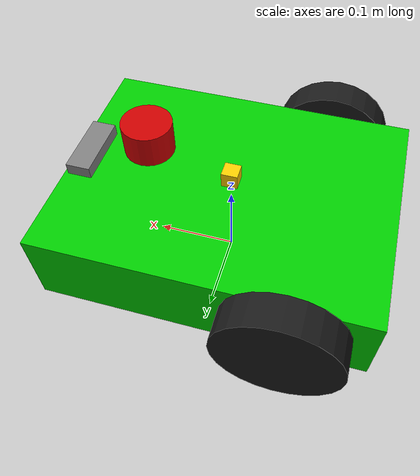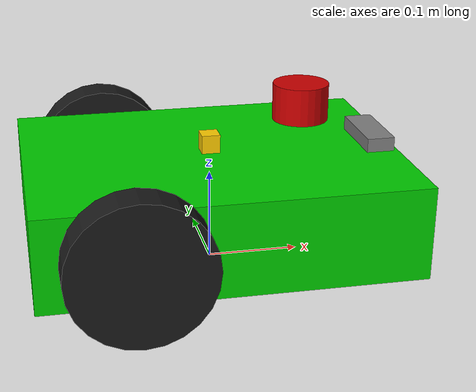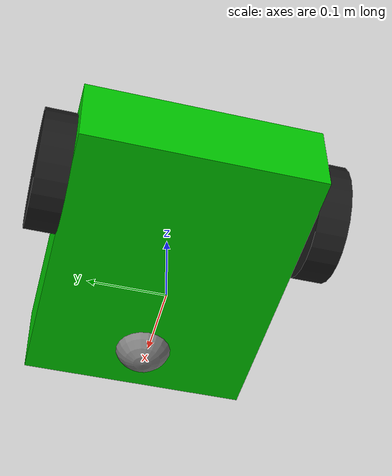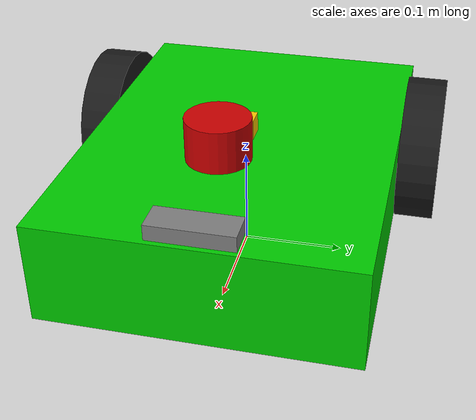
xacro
<?xml version="1.0"?>
<robot xmlns:xacro="http://www.ros.org/wiki/xacro" name="three_wheel_robot">

  <!-- ==================== PROPERTIES ==================== -->
  <xacro:property name="chassis_length" value="0.4"/>
  <xacro:property name="chassis_width" value="0.3"/>
  <xacro:property name="chassis_height" value="0.1"/>
  <xacro:property name="chassis_mass" value="5.0"/>

  <xacro:property name="wheel_radius" value="0.075"/>
  <xacro:property name="wheel_width" value="0.04"/>
  <xacro:property name="wheel_mass" value="0.5"/>

  <xacro:property name="caster_radius" value="0.04"/>
  <xacro:property name="caster_mass" value="0.2"/>

  <!-- ==================== MATERIALS ==================== -->
  <material name="green">
    <color rgba="0.0 0.8 0.0 1.0"/>
  </material>

  <material name="yellow">
    <color rgba="1.0 0.8 0.0 1.0"/>
  </material>

  <material name="red">
    <color rgba="0.8 0.0 0.0 1.0"/>
  </material>

  <material name="black">
    <color rgba="0.1 0.1 0.1 1.0"/>
  </material>

  <material name="gray">
    <color rgba="0.5 0.5 0.5 1.0"/>
  </material>

  <!-- ==================== INERTIA MACROS ==================== -->
  <xacro:macro name="box_inertia" params="mass x y z">
    <inertia
      ixx="${mass * (y*y + z*z) / 12.0}"
      ixy="0.0"
      ixz="0.0"
      iyy="${mass * (x*x + z*z) / 12.0}"
      iyz="0.0"
      izz="${mass * (x*x + y*y) / 12.0}"/>
  </xacro:macro>

  <xacro:macro name="cylinder_inertia" params="mass r h">
    <inertia
      ixx="${mass * (3*r*r + h*h) / 12.0}"
      ixy="0.0"
      ixz="0.0"
      iyy="${mass * (3*r*r + h*h) / 12.0}"
      iyz="0.0"
      izz="${mass * r * r / 2.0}"/>
  </xacro:macro>

  <xacro:macro name="sphere_inertia" params="mass r">
    <inertia
      ixx="${2 * mass * r * r / 5.0}"
      ixy="0.0"
      ixz="0.0"
      iyy="${2 * mass * r * r / 5.0}"
      iyz="0.0"
      izz="${2 * mass * r * r / 5.0}"/>
  </xacro:macro>

  <!-- ==================== BASE FOOTPRINT ==================== -->
  <link name="base_footprint"/>

  <joint name="base_joint" type="fixed">
    <parent link="base_footprint"/>
    <child link="base_link"/>
    <origin xyz="0 0 ${wheel_radius}" rpy="0 0 0"/>
  </joint>

  <!-- ==================== CHASSIS ==================== -->
  <link name="base_link">
    <visual>
      <geometry>
        <box size="${chassis_length} ${chassis_width} ${chassis_height}"/>
      </geometry>
      <material name="green"/>
    </visual>
    <collision>
      <geometry>
        <box size="${chassis_length} ${chassis_width} ${chassis_height}"/>
      </geometry>
    </collision>
    <inertial>
      <mass value="${chassis_mass}"/>
      <xacro:box_inertia mass="${chassis_mass}" x="${chassis_length}" y="${chassis_width}" z="${chassis_height}"/>
    </inertial>
  </link>

  <gazebo reference="base_link">
    <material>Gazebo/Green</material>
  </gazebo>

  <!-- ==================== WHEEL MACRO ==================== -->
  <xacro:macro name="wheel" params="prefix y_reflect">
    <link name="${prefix}_wheel">
      <visual>
        <geometry>
          <cylinder radius="${wheel_radius}" length="${wheel_width}"/>
        </geometry>
        <origin xyz="0 0 0" rpy="${pi/2} 0 0"/>
        <material name="black"/>
      </visual>
      <collision>
        <geometry>
          <cylinder radius="${wheel_radius}" length="${wheel_width}"/>
        </geometry>
        <origin xyz="0 0 0" rpy="${pi/2} 0 0"/>
      </collision>
      <inertial>
        <mass value="${wheel_mass}"/>
        <origin xyz="0 0 0" rpy="${pi/2} 0 0"/>
        <xacro:cylinder_inertia mass="${wheel_mass}" r="${wheel_radius}" h="${wheel_width}"/>
      </inertial>
    </link>

    <gazebo reference="${prefix}_wheel">
      <material>Gazebo/Black</material>
      <mu1>1.0</mu1>
      <mu2>1.0</mu2>
    </gazebo>

    <joint name="${prefix}_wheel_joint" type="continuous">
      <parent link="base_link"/>
      <child link="${prefix}_wheel"/>
      <origin xyz="${-chassis_length/4} ${y_reflect * (chassis_width/2 + wheel_width/2)} 0" rpy="0 0 0"/>
      <axis xyz="0 1 0"/>
    </joint>
  </xacro:macro>

  <!-- Create left and right wheels -->
  <xacro:wheel prefix="left" y_reflect="1"/>
  <xacro:wheel prefix="right" y_reflect="-1"/>

  <!-- ==================== CASTER WHEEL ==================== -->
  <link name="caster_wheel">
    <visual>
      <geometry>
        <sphere radius="${caster_radius}"/>
      </geometry>
      <material name="gray"/>
    </visual>
    <collision>
      <geometry>
        <sphere radius="${caster_radius}"/>
      </geometry>
    </collision>
    <inertial>
      <mass value="${caster_mass}"/>
      <xacro:sphere_inertia mass="${caster_mass}" r="${caster_radius}"/>
    </inertial>
  </link>

  <gazebo reference="caster_wheel">
    <material>Gazebo/Grey</material>
    <mu1>0.0</mu1>
    <mu2>0.0</mu2>
  </gazebo>

  <joint name="caster_wheel_joint" type="fixed">
    <parent link="base_link"/>
    <child link="caster_wheel"/>
    <origin xyz="${chassis_length/3} 0 ${-wheel_radius + caster_radius}" rpy="0 0 0"/>
  </joint>

  <!-- ==================== SENSORS ==================== -->

  <!-- IMU/Gyroscope -->
  <link name="imu_link">
    <visual>
      <geometry>
        <box size="0.02 0.02 0.02"/>
      </geometry>
      <material name="yellow"/>
    </visual>
    <collision>
      <geometry>
        <box size="0.02 0.02 0.02"/>
      </geometry>
    </collision>
    <inertial>
      <mass value="0.01"/>
      <xacro:box_inertia mass="0.01" x="0.02" y="0.02" z="0.02"/>
    </inertial>
  </link>

  <joint name="imu_joint" type="fixed">
    <parent link="base_link"/>
    <child link="imu_link"/>
    <origin xyz="0 0 ${chassis_height/2 + 0.01}" rpy="0 0 0"/>
  </joint>

  <gazebo reference="imu_link">
    <material>Gazebo/Yellow</material>
    <sensor name="imu_sensor" type="imu">
      <always_on>true</always_on>
      <update_rate>100</update_rate>
      <plugin name="imu_plugin" filename="libgazebo_ros_imu_sensor.so">
        <ros>
          <namespace>/robot</namespace>
          <remapping>~/out:=imu</remapping>
        </ros>
        <frame_name>imu_link</frame_name>
      </plugin>
    </sensor>
  </gazebo>

  <!-- Lidar/Proximity Sensor -->
  <link name="lidar_link">
    <visual>
      <geometry>
        <cylinder radius="0.03" length="0.04"/>
      </geometry>
      <material name="red"/>
    </visual>
    <collision>
      <geometry>
        <cylinder radius="0.03" length="0.04"/>
      </geometry>
    </collision>
    <inertial>
      <mass value="0.1"/>
      <xacro:cylinder_inertia mass="0.1" r="0.03" h="0.04"/>
    </inertial>
  </link>

  <joint name="lidar_joint" type="fixed">
    <parent link="base_link"/>
    <child link="lidar_link"/>
    <origin xyz="${chassis_length/4} 0 ${chassis_height/2 + 0.05}" rpy="0 0 0"/>
  </joint>

  <gazebo reference="lidar_link">
    <material>Gazebo/Red</material>
    <sensor name="lidar_sensor" type="ray">
      <always_on>true</always_on>
      <visualize>true</visualize>
      <update_rate>10</update_rate>
      <ray>
        <scan>
          <horizontal>
            <samples>360</samples>
            <resolution>1</resolution>
            <min_angle>-3.14159</min_angle>
            <max_angle>3.14159</max_angle>
          </horizontal>
        </scan>
        <range>
          <min>0.1</min>
          <max>10.0</max>
          <resolution>0.01</resolution>
        </range>
        <noise>
          <type>gaussian</type>
          <mean>0.0</mean>
          <stddev>0.01</stddev>
        </noise>
      </ray>
      <plugin name="lidar_plugin" filename="libgazebo_ros_ray_sensor.so">
        <ros>
          <namespace>/robot</namespace>
          <remapping>~/out:=scan</remapping>
        </ros>
        <output_type>sensor_msgs/LaserScan</output_type>
        <frame_name>lidar_link</frame_name>
      </plugin>
    </sensor>
  </gazebo>

  <!-- RGB Camera -->
  <link name="camera_link">
    <visual>
      <geometry>
        <box size="0.03 0.08 0.03"/>
      </geometry>
      <material name="gray"/>
    </visual>
    <collision>
      <geometry>
        <box size="0.03 0.08 0.03"/>
      </geometry>
    </collision>
    <inertial>
      <mass value="0.05"/>
      <xacro:box_inertia mass="0.05" x="0.03" y="0.08" z="0.03"/>
    </inertial>
  </link>

  <joint name="camera_joint" type="fixed">
    <parent link="base_link"/>
    <child link="camera_link"/>
    <origin xyz="${chassis_length/2 - 0.02} 0 ${chassis_height/2}" rpy="0 0 0"/>
  </joint>

  <link name="camera_optical_link"/>

  <joint name="camera_optical_joint" type="fixed">
    <parent link="camera_link"/>
    <child link="camera_optical_link"/>
    <origin xyz="0 0 0" rpy="${-pi/2} 0 ${-pi/2}"/>
  </joint>

  <gazebo reference="camera_link">
    <material>Gazebo/Grey</material>
    <sensor name="camera_sensor" type="camera">
      <always_on>true</always_on>
      <visualize>true</visualize>
      <update_rate>30</update_rate>
      <camera>
        <horizontal_fov>1.3962634</horizontal_fov>
        <image>
          <width>640</width>
          <height>480</height>
          <format>R8G8B8</format>
        </image>
        <clip>
          <near>0.02</near>
          <far>300</far>
        </clip>
        <noise>
          <type>gaussian</type>
          <mean>0.0</mean>
          <stddev>0.007</stddev>
        </noise>
      </camera>
      <plugin name="camera_plugin" filename="libgazebo_ros_camera.so">
        <ros>
          <namespace>/robot</namespace>
          <remapping>~/image_raw:=camera/image_raw</remapping>
          <remapping>~/camera_info:=camera/camera_info</remapping>
        </ros>
        <frame_name>camera_optical_link</frame_name>
      </plugin>
    </sensor>
  </gazebo>

  <!-- ==================== DIFFERENTIAL DRIVE PLUGIN ==================== -->
  <gazebo>
    <plugin name="diff_drive_controller" filename="libgazebo_ros_diff_drive.so">
      <ros>
        <namespace>/robot</namespace>
      </ros>

      <left_joint>left_wheel_joint</left_joint>
      <right_joint>right_wheel_joint</right_joint>

      <wheel_separation>${chassis_width + wheel_width}</wheel_separation>
      <wheel_diameter>${2 * wheel_radius}</wheel_diameter>

      <max_wheel_torque>10</max_wheel_torque>
      <max_wheel_acceleration>2.0</max_wheel_acceleration>

      <command_topic>cmd_vel</command_topic>
      <odometry_topic>odom</odometry_topic>
      <odometry_frame>odom</odometry_frame>
      <robot_base_frame>base_footprint</robot_base_frame>

      <publish_odom>true</publish_odom>
      <publish_odom_tf>true</publish_odom_tf>
      <publish_wheel_tf>true</publish_wheel_tf>

      <update_rate>50</update_rate>
    </plugin>
  </gazebo>

</robot>
